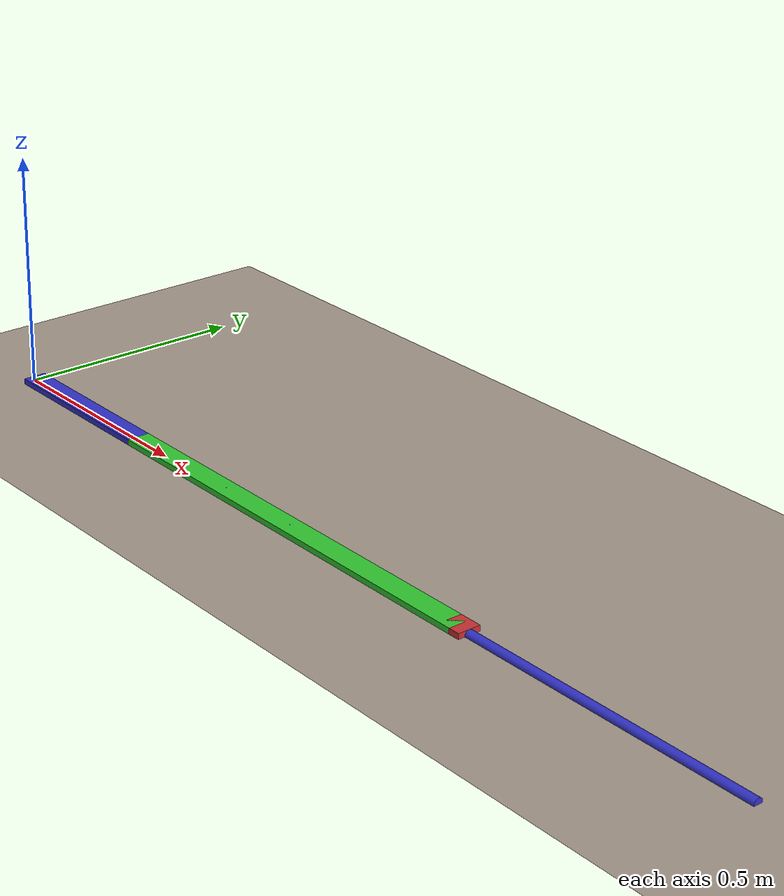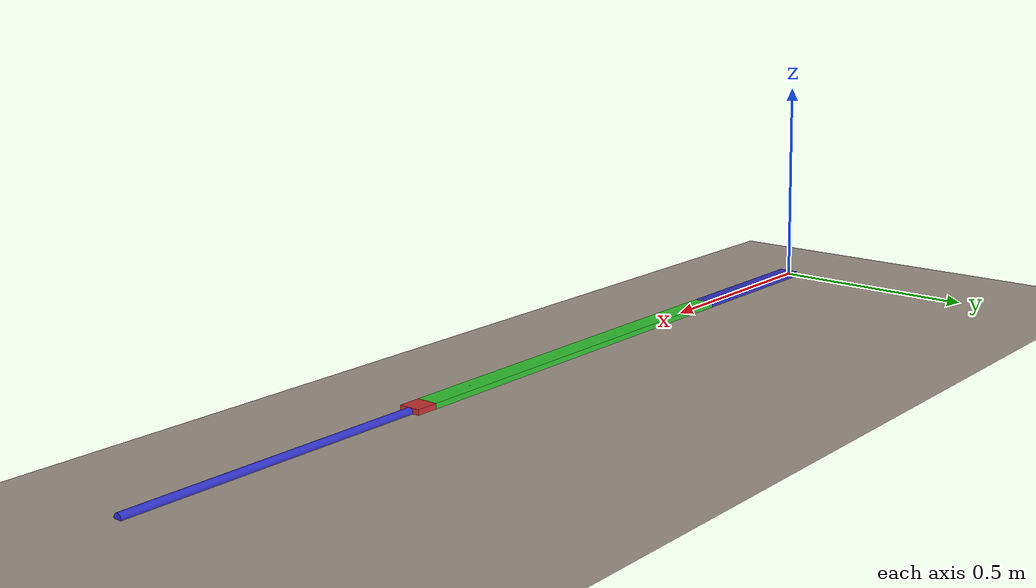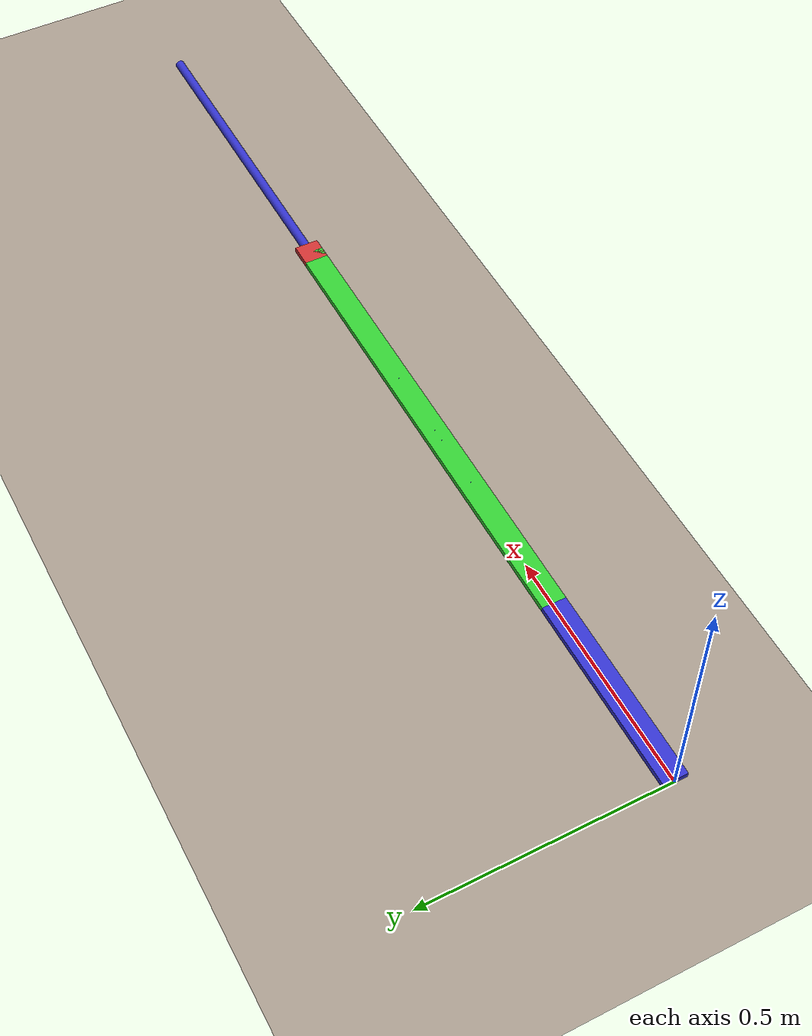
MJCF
<mujoco model="simple">
  <compiler angle="radian" autolimits="true"/>
  <default>
        <joint type="hinge" frictionloss="0.1" damping='2' />
        <position ctrllimited="true" ctrlrange="-3.14 3.14" forcelimited="true" forcerange="-50 50" kp="10" />
  </default>
  <asset>
    <texture name="grid" type="2d" builtin="checker" rgb1=".9 .8 .7" rgb2=".4 .4 .4" width="300" height="300" mark="edge" markrgb=".2 .3 .4"/>
    <material name="grid" texture="grid" texrepeat="2 2" texuniform="true" reflectance=".2"/>
  </asset>

  <worldbody>
    <light directional='true' diffuse='.3 .3 .3' specular='0.3 0.3 0.3' pos='0.3 0.3 3' dir='0.2 0.2 -1'/>
    <light castshadow="false" directional='true' diffuse='.3 .3 .3' specular='0.3 0.3 0.3' pos='0 0 3' dir='-1 1 -1'/>
    <light castshadow="false" directional='true' diffuse='.3 .3 .3' specular='0.3 0.3 0.3' pos='0 1 3' dir='0 -1 -1'/>
    <geom name="ground" type="plane" pos="0 0 0" size="10 10 0.1" material="grid" solimp=".9 .95 .001" solref='-10000 -1000'/>
    <camera name="closeup" pos="0 -.1 .07" xyaxes="3 0 0 0 1 2"/>
    <body name="a0" pos="0 0 0">
      <joint name="j1" axis='0 0 1' range="-10000 10000"/>
      <geom pos="0.2 0 0" size="0.2 0.025 0.01" type="box" contype="0" conaffinity="0" rgba="0.2 0.2 0.8 1" />
      <body name="a1" pos="0.4 0 0">
        <joint name="j2" axis='0 0 1'/>
        <site name="s1" pos="0 0 0"/>
        <geom pos="0.5 0 0" size="0.5 0.025 0.01" type="box" contype="0" conaffinity="0" rgba="0.2 0.8 0.2 1" />
      </body>
    </body>

    <body name="b1" pos="1.4 0 0">
      <geom pos="0 0 0" size="0.01 0.7" euler="0 1.5708 0" type="cylinder" contype="0" conaffinity="0" rgba="0.2 0.2 0.8 1" />
      <body name="b2" pos="0 0 0">
        <joint name="j3" axis='1 0 0' type='slide' range="-1000 1000"/>
        <site name="s2" pos="0 0 0"/>
        <geom name="bb2" pos="0 0 0" size="0.025 0.025 0.01" type="box" contype="0" conaffinity="0" rgba="0.8 0.2 0.2 1" />
      </body>
    </body>

  </worldbody>
  <contact>
        <exclude name="e0" body1="a0" body2="a1" />
        <exclude name="e3" body1="a0" body2="b1" />
        <exclude name="e4" body1="a0" body2="b2" />
        <exclude name="e1" body1="a1" body2="b1" />
        <exclude name="e2" body1="b1" body2="b2" />
  </contact>
  <equality>
    <connect name="lc" body1="b2" body2="a1" anchor="0 0 0"/>
  </equality>

  <sensor>
    <actuatorfrc name="s_pj1" actuator="pj1" />
    <force  name="s_j1" site="s1" />
    <force  name="s_j2" site="s2" />
  </sensor>

  <actuator>
    <velocity name='pj1' joint='j1'  ctrllimited="true" ctrlrange="-1000 1000"/>
  </actuator>

</mujoco>
